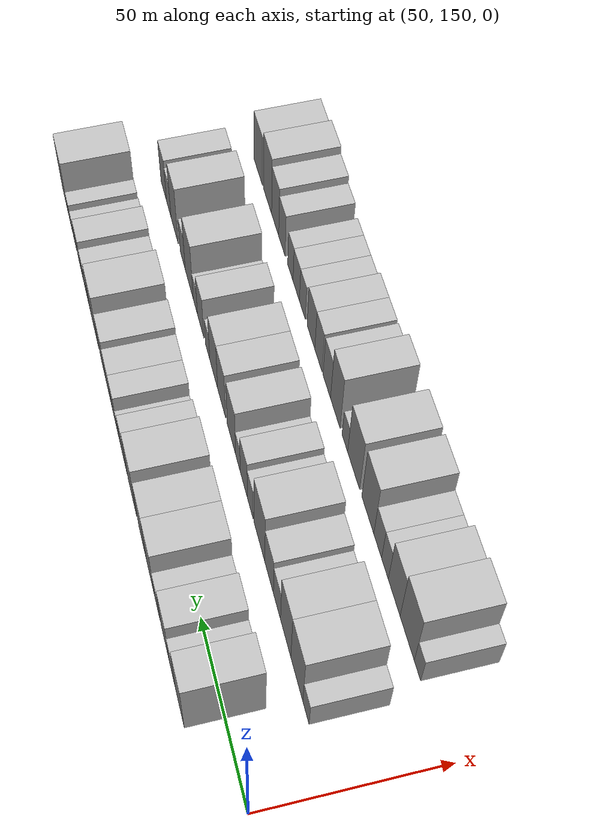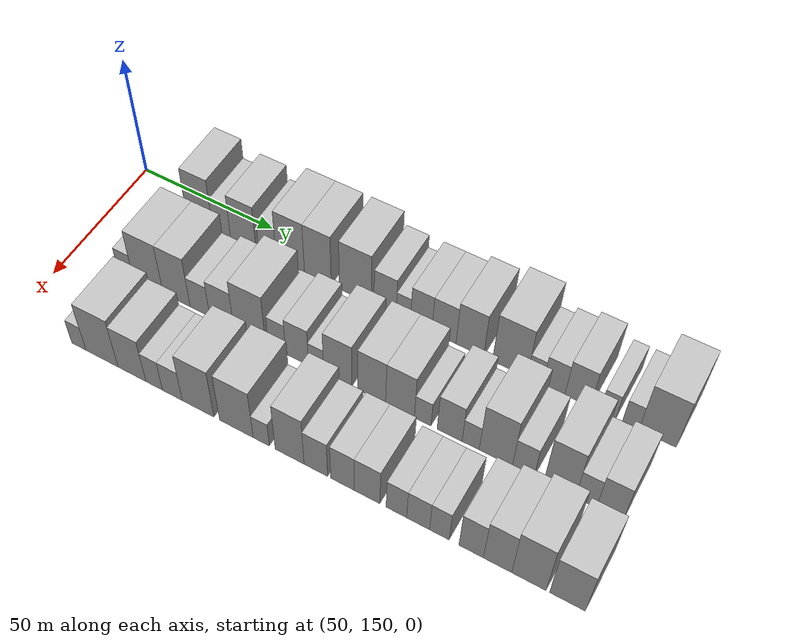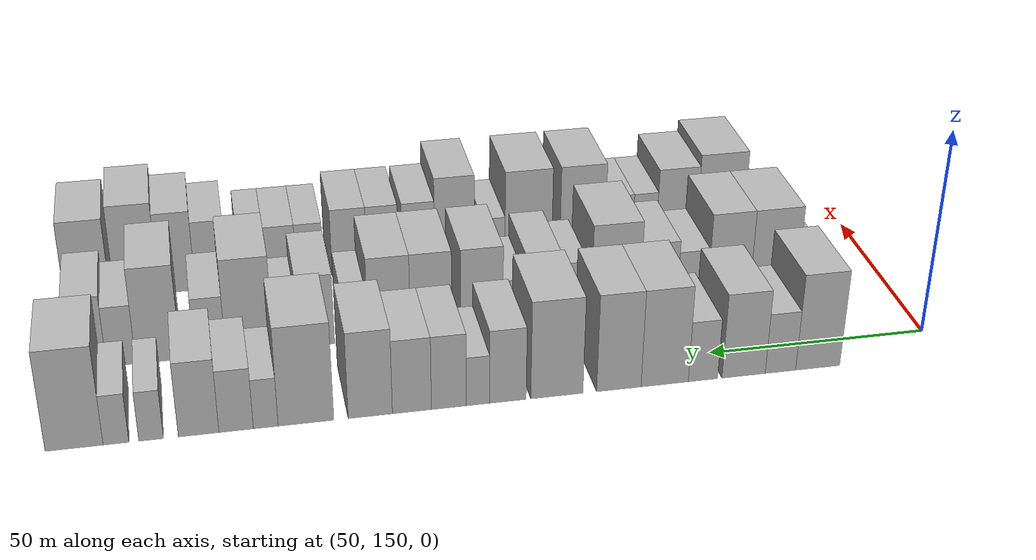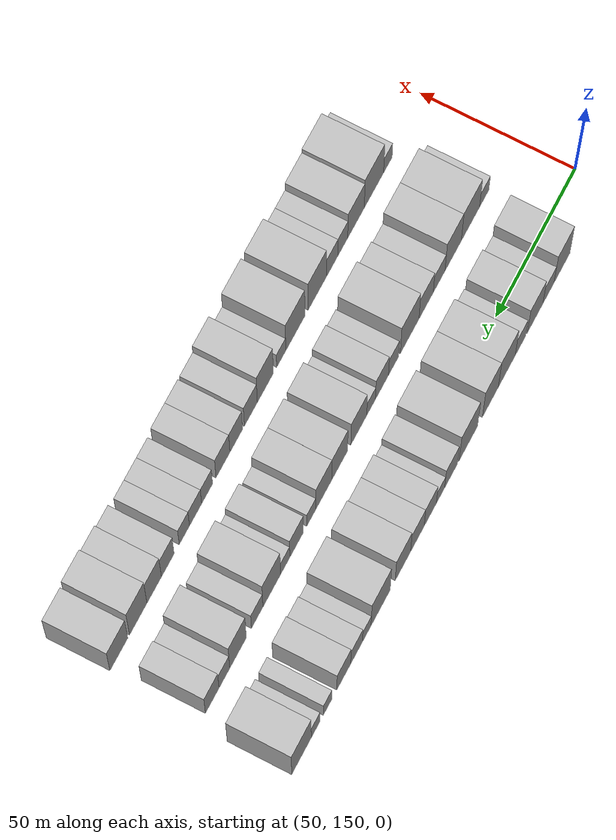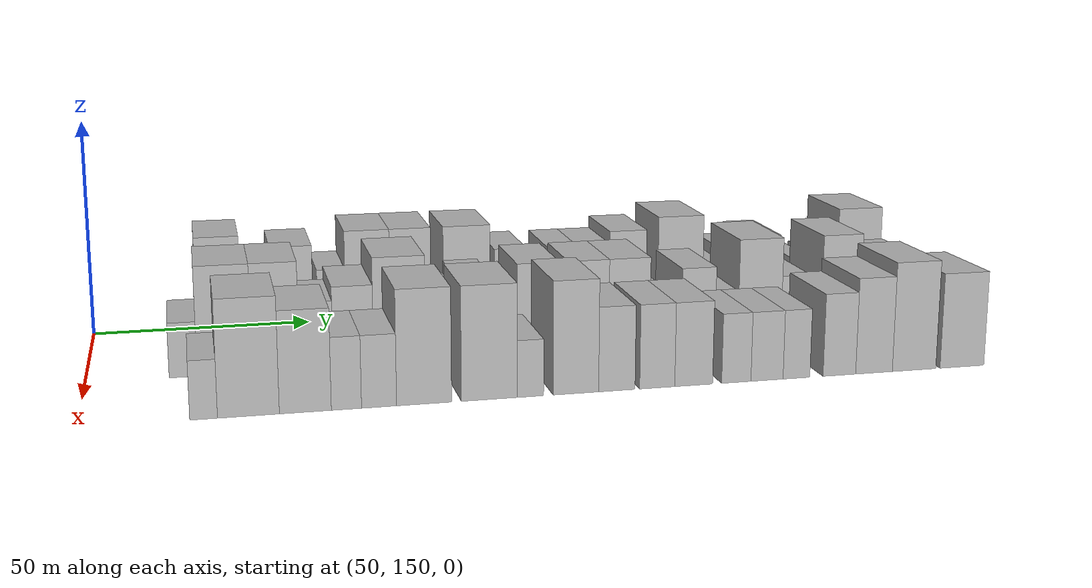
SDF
<sdf version="1.6">
 <world name="default">
  <model name="building_59">
   <static>1</static>
   <pose>50.0000 178.5469 0 0.000000 0.000000 0.000000</pose>
   <link name="link">
    <pose>0 0 12.00 0 0 0</pose>
    <collision name="collision"><geometry><box><size>20.0000 10.1099 24.0000</size></box></geometry></collision>
    <visual name="visual">
     <cast_shadows>0</cast_shadows>
     <geometry><box><size>20.0000 10.1099 24.0000</size></box></geometry>
     <material>
      <script>
       <uri>model://HANNAS_wall/materials/scripts</uri>
       <uri>model://HANNAS_wall/materials/textures</uri>
       <name>vrc/HANNAS_wall</name>
      </script>
     </material>
    </visual>
   </link>
  </model>
  <model name="building_60">
   <static>1</static>
   <pose>50.0000 187.0671 0 0.000000 0.000000 0.000000</pose>
   <link name="link">
    <pose>0 0 7.50 0 0 0</pose>
    <collision name="collision"><geometry><box><size>20.0000 6.9304 15.0000</size></box></geometry></collision>
    <visual name="visual">
     <cast_shadows>0</cast_shadows>
     <geometry><box><size>20.0000 6.9304 15.0000</size></box></geometry>
     <material>
      <script>
       <uri>model://HANNAS_wall/materials/scripts</uri>
       <uri>model://HANNAS_wall/materials/textures</uri>
       <name>vrc/HANNAS_wall</name>
      </script>
     </material>
    </visual>
   </link>
  </model>
  <model name="building_61">
   <static>1</static>
   <pose>50.0000 195.4137 0 0.000000 0.000000 0.000000</pose>
   <link name="link">
    <pose>0 0 10.50 0 0 0</pose>
    <collision name="collision"><geometry><box><size>20.0000 9.7629 21.0000</size></box></geometry></collision>
    <visual name="visual">
     <cast_shadows>0</cast_shadows>
     <geometry><box><size>20.0000 9.7629 21.0000</size></box></geometry>
     <material>
      <script>
       <uri>model://HANNAS_wall/materials/scripts</uri>
       <uri>model://HANNAS_wall/materials/textures</uri>
       <name>vrc/HANNAS_wall</name>
      </script>
     </material>
    </visual>
   </link>
  </model>
  <model name="building_62">
   <static>1</static>
   <pose>50.0000 204.5835 0 0.000000 0.000000 0.000000</pose>
   <link name="link">
    <pose>0 0 7.50 0 0 0</pose>
    <collision name="collision"><geometry><box><size>20.0000 6.5766 15.0000</size></box></geometry></collision>
    <visual name="visual">
     <cast_shadows>0</cast_shadows>
     <geometry><box><size>20.0000 6.5766 15.0000</size></box></geometry>
     <material>
      <script>
       <uri>model://HANNAS_wall/materials/scripts</uri>
       <uri>model://HANNAS_wall/materials/textures</uri>
       <name>vrc/HANNAS_wall</name>
      </script>
     </material>
    </visual>
   </link>
  </model>
  <model name="building_63">
   <static>1</static>
   <pose>50.0000 213.1306 0 0.000000 0.000000 0.000000</pose>
   <link name="link">
    <pose>0 0 12.00 0 0 0</pose>
    <collision name="collision"><geometry><box><size>20.0000 10.5175 24.0000</size></box></geometry></collision>
    <visual name="visual">
     <cast_shadows>0</cast_shadows>
     <geometry><box><size>20.0000 10.5175 24.0000</size></box></geometry>
     <material>
      <script>
       <uri>model://HANNAS_wall/materials/scripts</uri>
       <uri>model://HANNAS_wall/materials/textures</uri>
       <name>vrc/HANNAS_wall</name>
      </script>
     </material>
    </visual>
   </link>
  </model>
  <model name="building_64">
   <static>1</static>
   <pose>50.0000 223.2985 0 0.000000 0.000000 0.000000</pose>
   <link name="link">
    <pose>0 0 12.00 0 0 0</pose>
    <collision name="collision"><geometry><box><size>20.0000 9.8183 24.0000</size></box></geometry></collision>
    <visual name="visual">
     <cast_shadows>0</cast_shadows>
     <geometry><box><size>20.0000 9.8183 24.0000</size></box></geometry>
     <material>
      <script>
       <uri>model://HANNAS_wall/materials/scripts</uri>
       <uri>model://HANNAS_wall/materials/textures</uri>
       <name>vrc/HANNAS_wall</name>
      </script>
     </material>
    </visual>
   </link>
  </model>
  <model name="building_65">
   <static>1</static>
   <pose>50.0000 236.9011 0 0.000000 0.000000 0.000000</pose>
   <link name="link">
    <pose>0 0 12.00 0 0 0</pose>
    <collision name="collision"><geometry><box><size>20.0000 11.3869 24.0000</size></box></geometry></collision>
    <visual name="visual">
     <cast_shadows>0</cast_shadows>
     <geometry><box><size>20.0000 11.3869 24.0000</size></box></geometry>
     <material>
      <script>
       <uri>model://HANNAS_wall/materials/scripts</uri>
       <uri>model://HANNAS_wall/materials/textures</uri>
       <name>vrc/HANNAS_wall</name>
      </script>
     </material>
    </visual>
   </link>
  </model>
  <model name="building_66">
   <static>1</static>
   <pose>50.0000 247.5354 0 0.000000 0.000000 0.000000</pose>
   <link name="link">
    <pose>0 0 9.00 0 0 0</pose>
    <collision name="collision"><geometry><box><size>20.0000 7.8816 18.0000</size></box></geometry></collision>
    <visual name="visual">
     <cast_shadows>0</cast_shadows>
     <geometry><box><size>20.0000 7.8816 18.0000</size></box></geometry>
     <material>
      <script>
       <uri>model://HANNAS_wall/materials/scripts</uri>
       <uri>model://HANNAS_wall/materials/textures</uri>
       <name>vrc/HANNAS_wall</name>
      </script>
     </material>
    </visual>
   </link>
  </model>
  <model name="building_67">
   <static>1</static>
   <pose>50.0000 253.9852 0 0.000000 0.000000 0.000000</pose>
   <link name="link">
    <pose>0 0 6.00 0 0 0</pose>
    <collision name="collision"><geometry><box><size>20.0000 5.0180 12.0000</size></box></geometry></collision>
    <visual name="visual">
     <cast_shadows>0</cast_shadows>
     <geometry><box><size>20.0000 5.0180 12.0000</size></box></geometry>
     <material>
      <script>
       <uri>model://HANNAS_wall/materials/scripts</uri>
       <uri>model://HANNAS_wall/materials/textures</uri>
       <name>vrc/HANNAS_wall</name>
      </script>
     </material>
    </visual>
   </link>
  </model>
  <model name="building_68">
   <static>1</static>
   <pose>50.0000 260.2096 0 0.000000 0.000000 0.000000</pose>
   <link name="link">
    <pose>0 0 9.00 0 0 0</pose>
    <collision name="collision"><geometry><box><size>20.0000 7.4307 18.0000</size></box></geometry></collision>
    <visual name="visual">
     <cast_shadows>0</cast_shadows>
     <geometry><box><size>20.0000 7.4307 18.0000</size></box></geometry>
     <material>
      <script>
       <uri>model://HANNAS_wall/materials/scripts</uri>
       <uri>model://HANNAS_wall/materials/textures</uri>
       <name>vrc/HANNAS_wall</name>
      </script>
     </material>
    </visual>
   </link>
  </model>
  <model name="building_69">
   <static>1</static>
   <pose>50.0000 268.0678 0 0.000000 0.000000 0.000000</pose>
   <link name="link">
    <pose>0 0 9.00 0 0 0</pose>
    <collision name="collision"><geometry><box><size>20.0000 8.2858 18.0000</size></box></geometry></collision>
    <visual name="visual">
     <cast_shadows>0</cast_shadows>
     <geometry><box><size>20.0000 8.2858 18.0000</size></box></geometry>
     <material>
      <script>
       <uri>model://HANNAS_wall/materials/scripts</uri>
       <uri>model://HANNAS_wall/materials/textures</uri>
       <name>vrc/HANNAS_wall</name>
      </script>
     </material>
    </visual>
   </link>
  </model>
  <model name="building_70">
   <static>1</static>
   <pose>50.0000 276.8717 0 0.000000 0.000000 0.000000</pose>
   <link name="link">
    <pose>0 0 10.50 0 0 0</pose>
    <collision name="collision"><geometry><box><size>20.0000 9.3218 21.0000</size></box></geometry></collision>
    <visual name="visual">
     <cast_shadows>0</cast_shadows>
     <geometry><box><size>20.0000 9.3218 21.0000</size></box></geometry>
     <material>
      <script>
       <uri>model://HANNAS_wall/materials/scripts</uri>
       <uri>model://HANNAS_wall/materials/textures</uri>
       <name>vrc/HANNAS_wall</name>
      </script>
     </material>
    </visual>
   </link>
  </model>
  <model name="building_71">
   <static>1</static>
   <pose>50.0000 290.3228 0 0.000000 0.000000 0.000000</pose>
   <link name="link">
    <pose>0 0 12.00 0 0 0</pose>
    <collision name="collision"><geometry><box><size>20.0000 11.5806 24.0000</size></box></geometry></collision>
    <visual name="visual">
     <cast_shadows>0</cast_shadows>
     <geometry><box><size>20.0000 11.5806 24.0000</size></box></geometry>
     <material>
      <script>
       <uri>model://HANNAS_wall/materials/scripts</uri>
       <uri>model://HANNAS_wall/materials/textures</uri>
       <name>vrc/HANNAS_wall</name>
      </script>
     </material>
    </visual>
   </link>
  </model>
  <model name="building_72">
   <static>1</static>
   <pose>50.0000 298.6702 0 0.000000 0.000000 0.000000</pose>
   <link name="link">
    <pose>0 0 6.00 0 0 0</pose>
    <collision name="collision"><geometry><box><size>20.0000 5.1141 12.0000</size></box></geometry></collision>
    <visual name="visual">
     <cast_shadows>0</cast_shadows>
     <geometry><box><size>20.0000 5.1141 12.0000</size></box></geometry>
     <material>
      <script>
       <uri>model://HANNAS_wall/materials/scripts</uri>
       <uri>model://HANNAS_wall/materials/textures</uri>
       <name>vrc/HANNAS_wall</name>
      </script>
     </material>
    </visual>
   </link>
  </model>
  <model name="building_73">
   <static>1</static>
   <pose>50.0000 304.7559 0 0.000000 0.000000 0.000000</pose>
   <link name="link">
    <pose>0 0 7.50 0 0 0</pose>
    <collision name="collision"><geometry><box><size>20.0000 7.0574 15.0000</size></box></geometry></collision>
    <visual name="visual">
     <cast_shadows>0</cast_shadows>
     <geometry><box><size>20.0000 7.0574 15.0000</size></box></geometry>
     <material>
      <script>
       <uri>model://HANNAS_wall/materials/scripts</uri>
       <uri>model://HANNAS_wall/materials/textures</uri>
       <name>vrc/HANNAS_wall</name>
      </script>
     </material>
    </visual>
   </link>
  </model>
  <model name="building_74">
   <static>1</static>
   <pose>50.0000 312.4245 0 0.000000 0.000000 0.000000</pose>
   <link name="link">
    <pose>0 0 9.00 0 0 0</pose>
    <collision name="collision"><geometry><box><size>20.0000 8.2798 18.0000</size></box></geometry></collision>
    <visual name="visual">
     <cast_shadows>0</cast_shadows>
     <geometry><box><size>20.0000 8.2798 18.0000</size></box></geometry>
     <material>
      <script>
       <uri>model://HANNAS_wall/materials/scripts</uri>
       <uri>model://HANNAS_wall/materials/textures</uri>
       <name>vrc/HANNAS_wall</name>
      </script>
     </material>
    </visual>
   </link>
  </model>
  <model name="building_75">
   <static>1</static>
   <pose>50.0000 322.0567 0 0.000000 0.000000 0.000000</pose>
   <link name="link">
    <pose>0 0 6.00 0 0 0</pose>
    <collision name="collision"><geometry><box><size>20.0000 4.9844 12.0000</size></box></geometry></collision>
    <visual name="visual">
     <cast_shadows>0</cast_shadows>
     <geometry><box><size>20.0000 4.9844 12.0000</size></box></geometry>
     <material>
      <script>
       <uri>model://HANNAS_wall/materials/scripts</uri>
       <uri>model://HANNAS_wall/materials/textures</uri>
       <name>vrc/HANNAS_wall</name>
      </script>
     </material>
    </visual>
   </link>
  </model>
  <model name="building_76">
   <static>1</static>
   <pose>50.0000 329.1342 0 0.000000 0.000000 0.000000</pose>
   <link name="link">
    <pose>0 0 6.00 0 0 0</pose>
    <collision name="collision"><geometry><box><size>20.0000 5.1706 12.0000</size></box></geometry></collision>
    <visual name="visual">
     <cast_shadows>0</cast_shadows>
     <geometry><box><size>20.0000 5.1706 12.0000</size></box></geometry>
     <material>
      <script>
       <uri>model://HANNAS_wall/materials/scripts</uri>
       <uri>model://HANNAS_wall/materials/textures</uri>
       <name>vrc/HANNAS_wall</name>
      </script>
     </material>
    </visual>
   </link>
  </model>
  <model name="building_77">
   <static>1</static>
   <pose>50.0000 337.5018 0 0.000000 0.000000 0.000000</pose>
   <link name="link">
    <pose>0 0 12.00 0 0 0</pose>
    <collision name="collision"><geometry><box><size>20.0000 11.5647 24.0000</size></box></geometry></collision>
    <visual name="visual">
     <cast_shadows>0</cast_shadows>
     <geometry><box><size>20.0000 11.5647 24.0000</size></box></geometry>
     <material>
      <script>
       <uri>model://HANNAS_wall/materials/scripts</uri>
       <uri>model://HANNAS_wall/materials/textures</uri>
       <name>vrc/HANNAS_wall</name>
      </script>
     </material>
    </visual>
   </link>
  </model>
  <model name="building_134">
   <static>1</static>
   <pose>79.0000 170.1653 0 0.000000 0.000000 0.000000</pose>
   <link name="link">
    <pose>0 0 6.00 0 0 0</pose>
    <collision name="collision"><geometry><box><size>20.0000 5.8494 12.0000</size></box></geometry></collision>
    <visual name="visual">
     <cast_shadows>0</cast_shadows>
     <geometry><box><size>20.0000 5.8494 12.0000</size></box></geometry>
     <material>
      <script>
       <uri>model://HANNAS_wall/materials/scripts</uri>
       <uri>model://HANNAS_wall/materials/textures</uri>
       <name>vrc/HANNAS_wall</name>
      </script>
     </material>
    </visual>
   </link>
  </model>
  <model name="building_135">
   <static>1</static>
   <pose>79.0000 178.8191 0 0.000000 0.000000 0.000000</pose>
   <link name="link">
    <pose>0 0 12.00 0 0 0</pose>
    <collision name="collision"><geometry><box><size>20.0000 11.4582 24.0000</size></box></geometry></collision>
    <visual name="visual">
     <cast_shadows>0</cast_shadows>
     <geometry><box><size>20.0000 11.4582 24.0000</size></box></geometry>
     <material>
      <script>
       <uri>model://HANNAS_wall/materials/scripts</uri>
       <uri>model://HANNAS_wall/materials/textures</uri>
       <name>vrc/HANNAS_wall</name>
      </script>
     </material>
    </visual>
   </link>
  </model>
  <model name="building_136">
   <static>1</static>
   <pose>79.0000 189.6405 0 0.000000 0.000000 0.000000</pose>
   <link name="link">
    <pose>0 0 12.00 0 0 0</pose>
    <collision name="collision"><geometry><box><size>20.0000 10.1847 24.0000</size></box></geometry></collision>
    <visual name="visual">
     <cast_shadows>0</cast_shadows>
     <geometry><box><size>20.0000 10.1847 24.0000</size></box></geometry>
     <material>
      <script>
       <uri>model://HANNAS_wall/materials/scripts</uri>
       <uri>model://HANNAS_wall/materials/textures</uri>
       <name>vrc/HANNAS_wall</name>
      </script>
     </material>
    </visual>
   </link>
  </model>
  <model name="building_137">
   <static>1</static>
   <pose>79.0000 198.3490 0 0.000000 0.000000 0.000000</pose>
   <link name="link">
    <pose>0 0 7.50 0 0 0</pose>
    <collision name="collision"><geometry><box><size>20.0000 7.2322 15.0000</size></box></geometry></collision>
    <visual name="visual">
     <cast_shadows>0</cast_shadows>
     <geometry><box><size>20.0000 7.2322 15.0000</size></box></geometry>
     <material>
      <script>
       <uri>model://HANNAS_wall/materials/scripts</uri>
       <uri>model://HANNAS_wall/materials/textures</uri>
       <name>vrc/HANNAS_wall</name>
      </script>
     </material>
    </visual>
   </link>
  </model>
  <model name="building_138">
   <static>1</static>
   <pose>79.0000 206.3833 0 0.000000 0.000000 0.000000</pose>
   <link name="link">
    <pose>0 0 9.00 0 0 0</pose>
    <collision name="collision"><geometry><box><size>20.0000 8.8365 18.0000</size></box></geometry></collision>
    <visual name="visual">
     <cast_shadows>0</cast_shadows>
     <geometry><box><size>20.0000 8.8365 18.0000</size></box></geometry>
     <material>
      <script>
       <uri>model://HANNAS_wall/materials/scripts</uri>
       <uri>model://HANNAS_wall/materials/textures</uri>
       <name>vrc/HANNAS_wall</name>
      </script>
     </material>
    </visual>
   </link>
  </model>
  <model name="building_139">
   <static>1</static>
   <pose>79.0000 216.5638 0 0.000000 0.000000 0.000000</pose>
   <link name="link">
    <pose>0 0 12.00 0 0 0</pose>
    <collision name="collision"><geometry><box><size>20.0000 11.5245 24.0000</size></box></geometry></collision>
    <visual name="visual">
     <cast_shadows>0</cast_shadows>
     <geometry><box><size>20.0000 11.5245 24.0000</size></box></geometry>
     <material>
      <script>
       <uri>model://HANNAS_wall/materials/scripts</uri>
       <uri>model://HANNAS_wall/materials/textures</uri>
       <name>vrc/HANNAS_wall</name>
      </script>
     </material>
    </visual>
   </link>
  </model>
  <model name="building_140">
   <static>1</static>
   <pose>79.0000 226.4396 0 0.000000 0.000000 0.000000</pose>
   <link name="link">
    <pose>0 0 7.50 0 0 0</pose>
    <collision name="collision"><geometry><box><size>20.0000 6.2270 15.0000</size></box></geometry></collision>
    <visual name="visual">
     <cast_shadows>0</cast_shadows>
     <geometry><box><size>20.0000 6.2270 15.0000</size></box></geometry>
     <material>
      <script>
       <uri>model://HANNAS_wall/materials/scripts</uri>
       <uri>model://HANNAS_wall/materials/textures</uri>
       <name>vrc/HANNAS_wall</name>
      </script>
     </material>
    </visual>
   </link>
  </model>
  <model name="building_141">
   <static>1</static>
   <pose>79.0000 233.5675 0 0.000000 0.000000 0.000000</pose>
   <link name="link">
    <pose>0 0 9.00 0 0 0</pose>
    <collision name="collision"><geometry><box><size>20.0000 8.0289 18.0000</size></box></geometry></collision>
    <visual name="visual">
     <cast_shadows>0</cast_shadows>
     <geometry><box><size>20.0000 8.0289 18.0000</size></box></geometry>
     <material>
      <script>
       <uri>model://HANNAS_wall/materials/scripts</uri>
       <uri>model://HANNAS_wall/materials/textures</uri>
       <name>vrc/HANNAS_wall</name>
      </script>
     </material>
    </visual>
   </link>
  </model>
  <model name="building_142">
   <static>1</static>
   <pose>79.0000 240.2132 0 0.000000 0.000000 0.000000</pose>
   <link name="link">
    <pose>0 0 6.00 0 0 0</pose>
    <collision name="collision"><geometry><box><size>20.0000 5.2626 12.0000</size></box></geometry></collision>
    <visual name="visual">
     <cast_shadows>0</cast_shadows>
     <geometry><box><size>20.0000 5.2626 12.0000</size></box></geometry>
     <material>
      <script>
       <uri>model://HANNAS_wall/materials/scripts</uri>
       <uri>model://HANNAS_wall/materials/textures</uri>
       <name>vrc/HANNAS_wall</name>
      </script>
     </material>
    </visual>
   </link>
  </model>
  <model name="building_143">
   <static>1</static>
   <pose>79.0000 247.6874 0 0.000000 0.000000 0.000000</pose>
   <link name="link">
    <pose>0 0 10.50 0 0 0</pose>
    <collision name="collision"><geometry><box><size>20.0000 9.6859 21.0000</size></box></geometry></collision>
    <visual name="visual">
     <cast_shadows>0</cast_shadows>
     <geometry><box><size>20.0000 9.6859 21.0000</size></box></geometry>
     <material>
      <script>
       <uri>model://HANNAS_wall/materials/scripts</uri>
       <uri>model://HANNAS_wall/materials/textures</uri>
       <name>vrc/HANNAS_wall</name>
      </script>
     </material>
    </visual>
   </link>
  </model>
  <model name="building_144">
   <static>1</static>
   <pose>79.0000 259.2674 0 0.000000 0.000000 0.000000</pose>
   <link name="link">
    <pose>0 0 10.50 0 0 0</pose>
    <collision name="collision"><geometry><box><size>20.0000 9.4741 21.0000</size></box></geometry></collision>
    <visual name="visual">
     <cast_shadows>0</cast_shadows>
     <geometry><box><size>20.0000 9.4741 21.0000</size></box></geometry>
     <material>
      <script>
       <uri>model://HANNAS_wall/materials/scripts</uri>
       <uri>model://HANNAS_wall/materials/textures</uri>
       <name>vrc/HANNAS_wall</name>
      </script>
     </material>
    </visual>
   </link>
  </model>
  <model name="building_145">
   <static>1</static>
   <pose>79.0000 268.8218 0 0.000000 0.000000 0.000000</pose>
   <link name="link">
    <pose>0 0 10.50 0 0 0</pose>
    <collision name="collision"><geometry><box><size>20.0000 9.6345 21.0000</size></box></geometry></collision>
    <visual name="visual">
     <cast_shadows>0</cast_shadows>
     <geometry><box><size>20.0000 9.6345 21.0000</size></box></geometry>
     <material>
      <script>
       <uri>model://HANNAS_wall/materials/scripts</uri>
       <uri>model://HANNAS_wall/materials/textures</uri>
       <name>vrc/HANNAS_wall</name>
      </script>
     </material>
    </visual>
   </link>
  </model>
  <model name="building_146">
   <static>1</static>
   <pose>79.0000 276.3745 0 0.000000 0.000000 0.000000</pose>
   <link name="link">
    <pose>0 0 6.00 0 0 0</pose>
    <collision name="collision"><geometry><box><size>20.0000 5.4711 12.0000</size></box></geometry></collision>
    <visual name="visual">
     <cast_shadows>0</cast_shadows>
     <geometry><box><size>20.0000 5.4711 12.0000</size></box></geometry>
     <material>
      <script>
       <uri>model://HANNAS_wall/materials/scripts</uri>
       <uri>model://HANNAS_wall/materials/textures</uri>
       <name>vrc/HANNAS_wall</name>
      </script>
     </material>
    </visual>
   </link>
  </model>
  <model name="building_147">
   <static>1</static>
   <pose>79.0000 285.1706 0 0.000000 0.000000 0.000000</pose>
   <link name="link">
    <pose>0 0 9.00 0 0 0</pose>
    <collision name="collision"><geometry><box><size>20.0000 8.1210 18.0000</size></box></geometry></collision>
    <visual name="visual">
     <cast_shadows>0</cast_shadows>
     <geometry><box><size>20.0000 8.1210 18.0000</size></box></geometry>
     <material>
      <script>
       <uri>model://HANNAS_wall/materials/scripts</uri>
       <uri>model://HANNAS_wall/materials/textures</uri>
       <name>vrc/HANNAS_wall</name>
      </script>
     </material>
    </visual>
   </link>
  </model>
  <model name="building_148">
   <static>1</static>
   <pose>79.0000 291.9852 0 0.000000 0.000000 0.000000</pose>
   <link name="link">
    <pose>0 0 6.00 0 0 0</pose>
    <collision name="collision"><geometry><box><size>20.0000 5.5083 12.0000</size></box></geometry></collision>
    <visual name="visual">
     <cast_shadows>0</cast_shadows>
     <geometry><box><size>20.0000 5.5083 12.0000</size></box></geometry>
     <material>
      <script>
       <uri>model://HANNAS_wall/materials/scripts</uri>
       <uri>model://HANNAS_wall/materials/textures</uri>
       <name>vrc/HANNAS_wall</name>
      </script>
     </material>
    </visual>
   </link>
  </model>
  <model name="building_149">
   <static>1</static>
   <pose>79.0000 300.0008 0 0.000000 0.000000 0.000000</pose>
   <link name="link">
    <pose>0 0 12.00 0 0 0</pose>
    <collision name="collision"><geometry><box><size>20.0000 10.5228 24.0000</size></box></geometry></collision>
    <visual name="visual">
     <cast_shadows>0</cast_shadows>
     <geometry><box><size>20.0000 10.5228 24.0000</size></box></geometry>
     <material>
      <script>
       <uri>model://HANNAS_wall/materials/scripts</uri>
       <uri>model://HANNAS_wall/materials/textures</uri>
       <name>vrc/HANNAS_wall</name>
      </script>
     </material>
    </visual>
   </link>
  </model>
  <model name="building_150">
   <static>1</static>
   <pose>79.0000 308.6740 0 0.000000 0.000000 0.000000</pose>
   <link name="link">
    <pose>0 0 7.50 0 0 0</pose>
    <collision name="collision"><geometry><box><size>20.0000 6.8236 15.0000</size></box></geometry></collision>
    <visual name="visual">
     <cast_shadows>0</cast_shadows>
     <geometry><box><size>20.0000 6.8236 15.0000</size></box></geometry>
     <material>
      <script>
       <uri>model://HANNAS_wall/materials/scripts</uri>
       <uri>model://HANNAS_wall/materials/textures</uri>
       <name>vrc/HANNAS_wall</name>
      </script>
     </material>
    </visual>
   </link>
  </model>
  <model name="building_151">
   <static>1</static>
   <pose>79.0000 319.9602 0 0.000000 0.000000 0.000000</pose>
   <link name="link">
    <pose>0 0 12.00 0 0 0</pose>
    <collision name="collision"><geometry><box><size>20.0000 9.7489 24.0000</size></box></geometry></collision>
    <visual name="visual">
     <cast_shadows>0</cast_shadows>
     <geometry><box><size>20.0000 9.7489 24.0000</size></box></geometry>
     <material>
      <script>
       <uri>model://HANNAS_wall/materials/scripts</uri>
       <uri>model://HANNAS_wall/materials/textures</uri>
       <name>vrc/HANNAS_wall</name>
      </script>
     </material>
    </visual>
   </link>
  </model>
  <model name="building_152">
   <static>1</static>
   <pose>79.0000 327.9884 0 0.000000 0.000000 0.000000</pose>
   <link name="link">
    <pose>0 0 7.50 0 0 0</pose>
    <collision name="collision"><geometry><box><size>20.0000 6.3074 15.0000</size></box></geometry></collision>
    <visual name="visual">
     <cast_shadows>0</cast_shadows>
     <geometry><box><size>20.0000 6.3074 15.0000</size></box></geometry>
     <material>
      <script>
       <uri>model://HANNAS_wall/materials/scripts</uri>
       <uri>model://HANNAS_wall/materials/textures</uri>
       <name>vrc/HANNAS_wall</name>
      </script>
     </material>
    </visual>
   </link>
  </model>
  <model name="building_153">
   <static>1</static>
   <pose>79.0000 335.1418 0 0.000000 0.000000 0.000000</pose>
   <link name="link">
    <pose>0 0 9.00 0 0 0</pose>
    <collision name="collision"><geometry><box><size>20.0000 7.9994 18.0000</size></box></geometry></collision>
    <visual name="visual">
     <cast_shadows>0</cast_shadows>
     <geometry><box><size>20.0000 7.9994 18.0000</size></box></geometry>
     <material>
      <script>
       <uri>model://HANNAS_wall/materials/scripts</uri>
       <uri>model://HANNAS_wall/materials/textures</uri>
       <name>vrc/HANNAS_wall</name>
      </script>
     </material>
    </visual>
   </link>
  </model>
  <model name="building_213">
   <static>1</static>
   <pose>108.0000 173.9003 0 0.000000 0.000000 0.000000</pose>
   <link name="link">
    <pose>0 0 6.00 0 0 0</pose>
    <collision name="collision"><geometry><box><size>20.0000 5.3096 12.0000</size></box></geometry></collision>
    <visual name="visual">
     <cast_shadows>0</cast_shadows>
     <geometry><box><size>20.0000 5.3096 12.0000</size></box></geometry>
     <material>
      <script>
       <uri>model://HANNAS_wall/materials/scripts</uri>
       <uri>model://HANNAS_wall/materials/textures</uri>
       <name>vrc/HANNAS_wall</name>
      </script>
     </material>
    </visual>
   </link>
  </model>
  <model name="building_214">
   <static>1</static>
   <pose>108.0000 182.5475 0 0.000000 0.000000 0.000000</pose>
   <link name="link">
    <pose>0 0 12.00 0 0 0</pose>
    <collision name="collision"><geometry><box><size>20.0000 11.9848 24.0000</size></box></geometry></collision>
    <visual name="visual">
     <cast_shadows>0</cast_shadows>
     <geometry><box><size>20.0000 11.9848 24.0000</size></box></geometry>
     <material>
      <script>
       <uri>model://HANNAS_wall/materials/scripts</uri>
       <uri>model://HANNAS_wall/materials/textures</uri>
       <name>vrc/HANNAS_wall</name>
      </script>
     </material>
    </visual>
   </link>
  </model>
  <model name="building_215">
   <static>1</static>
   <pose>108.0000 193.6501 0 0.000000 0.000000 0.000000</pose>
   <link name="link">
    <pose>0 0 10.50 0 0 0</pose>
    <collision name="collision"><geometry><box><size>20.0000 10.2205 21.0000</size></box></geometry></collision>
    <visual name="visual">
     <cast_shadows>0</cast_shadows>
     <geometry><box><size>20.0000 10.2205 21.0000</size></box></geometry>
     <material>
      <script>
       <uri>model://HANNAS_wall/materials/scripts</uri>
       <uri>model://HANNAS_wall/materials/textures</uri>
       <name>vrc/HANNAS_wall</name>
      </script>
     </material>
    </visual>
   </link>
  </model>
  <model name="building_216">
   <static>1</static>
   <pose>108.0000 201.7609 0 0.000000 0.000000 0.000000</pose>
   <link name="link">
    <pose>0 0 7.50 0 0 0</pose>
    <collision name="collision"><geometry><box><size>20.0000 6.0011 15.0000</size></box></geometry></collision>
    <visual name="visual">
     <cast_shadows>0</cast_shadows>
     <geometry><box><size>20.0000 6.0011 15.0000</size></box></geometry>
     <material>
      <script>
       <uri>model://HANNAS_wall/materials/scripts</uri>
       <uri>model://HANNAS_wall/materials/textures</uri>
       <name>vrc/HANNAS_wall</name>
      </script>
     </material>
    </visual>
   </link>
  </model>
  <model name="building_217">
   <static>1</static>
   <pose>108.0000 208.2835 0 0.000000 0.000000 0.000000</pose>
   <link name="link">
    <pose>0 0 7.50 0 0 0</pose>
    <collision name="collision"><geometry><box><size>20.0000 7.0441 15.0000</size></box></geometry></collision>
    <visual name="visual">
     <cast_shadows>0</cast_shadows>
     <geometry><box><size>20.0000 7.0441 15.0000</size></box></geometry>
     <material>
      <script>
       <uri>model://HANNAS_wall/materials/scripts</uri>
       <uri>model://HANNAS_wall/materials/textures</uri>
       <name>vrc/HANNAS_wall</name>
      </script>
     </material>
    </visual>
   </link>
  </model>
  <model name="building_218">
   <static>1</static>
   <pose>108.0000 217.3992 0 0.000000 0.000000 0.000000</pose>
   <link name="link">
    <pose>0 0 12.00 0 0 0</pose>
    <collision name="collision"><geometry><box><size>20.0000 11.1871 24.0000</size></box></geometry></collision>
    <visual name="visual">
     <cast_shadows>0</cast_shadows>
     <geometry><box><size>20.0000 11.1871 24.0000</size></box></geometry>
     <material>
      <script>
       <uri>model://HANNAS_wall/materials/scripts</uri>
       <uri>model://HANNAS_wall/materials/textures</uri>
       <name>vrc/HANNAS_wall</name>
      </script>
     </material>
    </visual>
   </link>
  </model>
  <model name="building_219">
   <static>1</static>
   <pose>108.0000 230.7768 0 0.000000 0.000000 0.000000</pose>
   <link name="link">
    <pose>0 0 12.00 0 0 0</pose>
    <collision name="collision"><geometry><box><size>20.0000 11.5681 24.0000</size></box></geometry></collision>
    <visual name="visual">
     <cast_shadows>0</cast_shadows>
     <geometry><box><size>20.0000 11.5681 24.0000</size></box></geometry>
     <material>
      <script>
       <uri>model://HANNAS_wall/materials/scripts</uri>
       <uri>model://HANNAS_wall/materials/textures</uri>
       <name>vrc/HANNAS_wall</name>
      </script>
     </material>
    </visual>
   </link>
  </model>
  <model name="building_220">
   <static>1</static>
   <pose>108.0000 239.3148 0 0.000000 0.000000 0.000000</pose>
   <link name="link">
    <pose>0 0 6.00 0 0 0</pose>
    <collision name="collision"><geometry><box><size>20.0000 5.5080 12.0000</size></box></geometry></collision>
    <visual name="visual">
     <cast_shadows>0</cast_shadows>
     <geometry><box><size>20.0000 5.5080 12.0000</size></box></geometry>
     <material>
      <script>
       <uri>model://HANNAS_wall/materials/scripts</uri>
       <uri>model://HANNAS_wall/materials/textures</uri>
       <name>vrc/HANNAS_wall</name>
      </script>
     </material>
    </visual>
   </link>
  </model>
  <model name="building_221">
   <static>1</static>
   <pose>108.0000 248.9003 0 0.000000 0.000000 0.000000</pose>
   <link name="link">
    <pose>0 0 12.00 0 0 0</pose>
    <collision name="collision"><geometry><box><size>20.0000 9.6630 24.0000</size></box></geometry></collision>
    <visual name="visual">
     <cast_shadows>0</cast_shadows>
     <geometry><box><size>20.0000 9.6630 24.0000</size></box></geometry>
     <material>
      <script>
       <uri>model://HANNAS_wall/materials/scripts</uri>
       <uri>model://HANNAS_wall/materials/textures</uri>
       <name>vrc/HANNAS_wall</name>
      </script>
     </material>
    </visual>
   </link>
  </model>
  <model name="building_222">
   <static>1</static>
   <pose>108.0000 257.6306 0 0.000000 0.000000 0.000000</pose>
   <link name="link">
    <pose>0 0 9.00 0 0 0</pose>
    <collision name="collision"><geometry><box><size>20.0000 7.7978 18.0000</size></box></geometry></collision>
    <visual name="visual">
     <cast_shadows>0</cast_shadows>
     <geometry><box><size>20.0000 7.7978 18.0000</size></box></geometry>
     <material>
      <script>
       <uri>model://HANNAS_wall/materials/scripts</uri>
       <uri>model://HANNAS_wall/materials/textures</uri>
       <name>vrc/HANNAS_wall</name>
      </script>
     </material>
    </visual>
   </link>
  </model>
  <model name="building_223">
   <static>1</static>
   <pose>108.0000 266.3444 0 0.000000 0.000000 0.000000</pose>
   <link name="link">
    <pose>0 0 9.00 0 0 0</pose>
    <collision name="collision"><geometry><box><size>20.0000 7.6298 18.0000</size></box></geometry></collision>
    <visual name="visual">
     <cast_shadows>0</cast_shadows>
     <geometry><box><size>20.0000 7.6298 18.0000</size></box></geometry>
     <material>
      <script>
       <uri>model://HANNAS_wall/materials/scripts</uri>
       <uri>model://HANNAS_wall/materials/textures</uri>
       <name>vrc/HANNAS_wall</name>
      </script>
     </material>
    </visual>
   </link>
  </model>
  <model name="building_224">
   <static>1</static>
   <pose>108.0000 274.3096 0 0.000000 0.000000 0.000000</pose>
   <link name="link">
    <pose>0 0 9.00 0 0 0</pose>
    <collision name="collision"><geometry><box><size>20.0000 8.3005 18.0000</size></box></geometry></collision>
    <visual name="visual">
     <cast_shadows>0</cast_shadows>
     <geometry><box><size>20.0000 8.3005 18.0000</size></box></geometry>
     <material>
      <script>
       <uri>model://HANNAS_wall/materials/scripts</uri>
       <uri>model://HANNAS_wall/materials/textures</uri>
       <name>vrc/HANNAS_wall</name>
      </script>
     </material>
    </visual>
   </link>
  </model>
  <model name="building_225">
   <static>1</static>
   <pose>108.0000 283.7125 0 0.000000 0.000000 0.000000</pose>
   <link name="link">
    <pose>0 0 7.50 0 0 0</pose>
    <collision name="collision"><geometry><box><size>20.0000 6.5053 15.0000</size></box></geometry></collision>
    <visual name="visual">
     <cast_shadows>0</cast_shadows>
     <geometry><box><size>20.0000 6.5053 15.0000</size></box></geometry>
     <material>
      <script>
       <uri>model://HANNAS_wall/materials/scripts</uri>
       <uri>model://HANNAS_wall/materials/textures</uri>
       <name>vrc/HANNAS_wall</name>
      </script>
     </material>
    </visual>
   </link>
  </model>
  <model name="building_226">
   <static>1</static>
   <pose>108.0000 290.5660 0 0.000000 0.000000 0.000000</pose>
   <link name="link">
    <pose>0 0 7.50 0 0 0</pose>
    <collision name="collision"><geometry><box><size>20.0000 7.2017 15.0000</size></box></geometry></collision>
    <visual name="visual">
     <cast_shadows>0</cast_shadows>
     <geometry><box><size>20.0000 7.2017 15.0000</size></box></geometry>
     <material>
      <script>
       <uri>model://HANNAS_wall/materials/scripts</uri>
       <uri>model://HANNAS_wall/materials/textures</uri>
       <name>vrc/HANNAS_wall</name>
      </script>
     </material>
    </visual>
   </link>
  </model>
  <model name="building_227">
   <static>1</static>
   <pose>108.0000 297.1976 0 0.000000 0.000000 0.000000</pose>
   <link name="link">
    <pose>0 0 7.50 0 0 0</pose>
    <collision name="collision"><geometry><box><size>20.0000 6.0615 15.0000</size></box></geometry></collision>
    <visual name="visual">
     <cast_shadows>0</cast_shadows>
     <geometry><box><size>20.0000 6.0615 15.0000</size></box></geometry>
     <material>
      <script>
       <uri>model://HANNAS_wall/materials/scripts</uri>
       <uri>model://HANNAS_wall/materials/textures</uri>
       <name>vrc/HANNAS_wall</name>
      </script>
     </material>
    </visual>
   </link>
  </model>
  <model name="building_228">
   <static>1</static>
   <pose>108.0000 306.9645 0 0.000000 0.000000 0.000000</pose>
   <link name="link">
    <pose>0 0 9.00 0 0 0</pose>
    <collision name="collision"><geometry><box><size>20.0000 7.4722 18.0000</size></box></geometry></collision>
    <visual name="visual">
     <cast_shadows>0</cast_shadows>
     <geometry><box><size>20.0000 7.4722 18.0000</size></box></geometry>
     <material>
      <script>
       <uri>model://HANNAS_wall/materials/scripts</uri>
       <uri>model://HANNAS_wall/materials/textures</uri>
       <name>vrc/HANNAS_wall</name>
      </script>
     </material>
    </visual>
   </link>
  </model>
  <model name="building_229">
   <static>1</static>
   <pose>108.0000 314.9404 0 0.000000 0.000000 0.000000</pose>
   <link name="link">
    <pose>0 0 10.50 0 0 0</pose>
    <collision name="collision"><geometry><box><size>20.0000 8.4795 21.0000</size></box></geometry></collision>
    <visual name="visual">
     <cast_shadows>0</cast_shadows>
     <geometry><box><size>20.0000 8.4795 21.0000</size></box></geometry>
     <material>
      <script>
       <uri>model://HANNAS_wall/materials/scripts</uri>
       <uri>model://HANNAS_wall/materials/textures</uri>
       <name>vrc/HANNAS_wall</name>
      </script>
     </material>
    </visual>
   </link>
  </model>
  <model name="building_230">
   <static>1</static>
   <pose>108.0000 324.2708 0 0.000000 0.000000 0.000000</pose>
   <link name="link">
    <pose>0 0 12.00 0 0 0</pose>
    <collision name="collision"><geometry><box><size>20.0000 10.1812 24.0000</size></box></geometry></collision>
    <visual name="visual">
     <cast_shadows>0</cast_shadows>
     <geometry><box><size>20.0000 10.1812 24.0000</size></box></geometry>
     <material>
      <script>
       <uri>model://HANNAS_wall/materials/scripts</uri>
       <uri>model://HANNAS_wall/materials/textures</uri>
       <name>vrc/HANNAS_wall</name>
      </script>
     </material>
    </visual>
   </link>
  </model>
  <model name="building_231">
   <static>1</static>
   <pose>108.0000 335.5604 0 0.000000 0.000000 0.000000</pose>
   <link name="link">
    <pose>0 0 10.50 0 0 0</pose>
    <collision name="collision"><geometry><box><size>20.0000 10.3981 21.0000</size></box></geometry></collision>
    <visual name="visual">
     <cast_shadows>0</cast_shadows>
     <geometry><box><size>20.0000 10.3981 21.0000</size></box></geometry>
     <material>
      <script>
       <uri>model://HANNAS_wall/materials/scripts</uri>
       <uri>model://HANNAS_wall/materials/textures</uri>
       <name>vrc/HANNAS_wall</name>
      </script>
     </material>
    </visual>
   </link>
  </model>
 </world>
</sdf>
